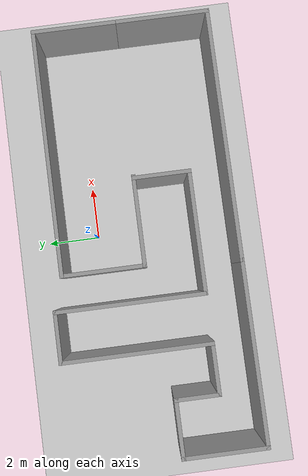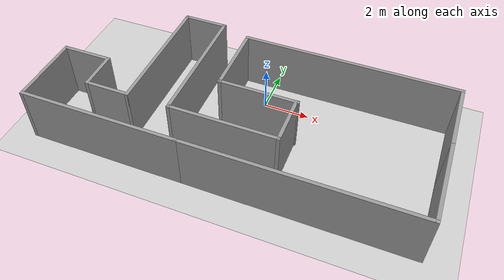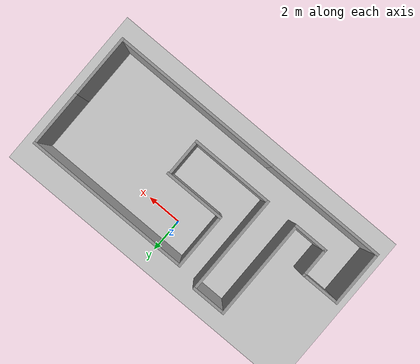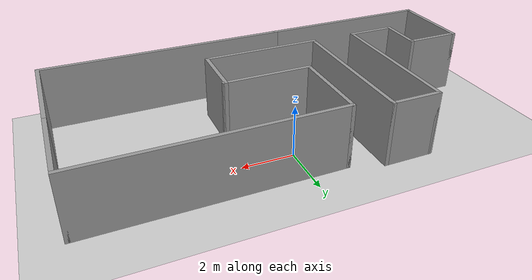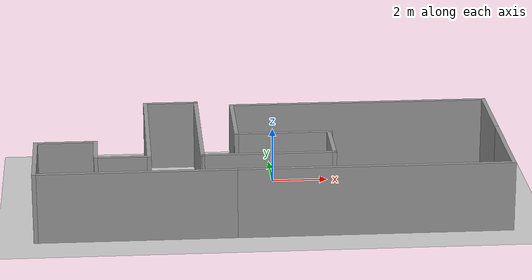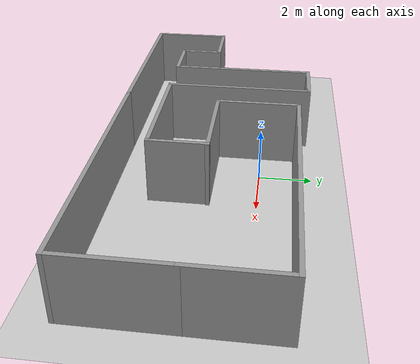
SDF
<sdf version="1.6">
 <world name="default">
  <light name="sun" type="directional">
   <pose>0 0 10 0 -0 0</pose>
   <diffuse>0.8 0.8 0.8 1</diffuse>
   <specular>0.2 0.2 0.2 1</specular>
   <attenuation>
    <range>1000</range>
    <constant>0.9</constant>
    <linear>0.01</linear>
    <quadratic>0.001</quadratic>
   </attenuation>
   <direction>-0.5 0.1 -0.9</direction>
  </light>
  <model name="ground_plane">
   <static>1</static>
   <link name="link">
    <collision name="collision">
     <geometry><plane><normal>0 0 1</normal><size>100 100</size></plane></geometry>
     <surface>
      <contact><collide_bitmask>65535</collide_bitmask></contact>
      <friction><ode><mu>100</mu><mu2>50</mu2></ode></friction>
     </surface>
    </collision>
    <visual name="visual">
     <cast_shadows>0</cast_shadows>
     <geometry><plane><normal>0 0 1</normal><size>100 100</size></plane></geometry>
     <material>
      <script><uri>file://media/materials/scripts/gazebo.material</uri><name>Gazebo/Grey</name></script>
     </material>
    </visual>
   </link>
  </model>
  <gravity>0 0 -9.8</gravity>
  <magnetic_field>6e-06 2.3e-05 -4.2e-05</magnetic_field>
  <atmosphere type="adiabatic"/>
  <physics name="default_physics" default="0" type="ode">
   <max_step_size>0.001</max_step_size>
   <real_time_factor>1</real_time_factor>
   <real_time_update_rate>1000</real_time_update_rate>
  </physics>
  <scene><ambient>0.4 0.4 0.4 1</ambient><background>0.7 0.7 0.7 1</background><shadows>1</shadows></scene>
  <audio><device>default</device></audio>
  <spherical_coordinates>
   <surface_model>EARTH_WGS84</surface_model>
   <latitude_deg>0</latitude_deg>
   <longitude_deg>0</longitude_deg>
   <elevation>0</elevation>
   <heading_deg>0</heading_deg>
  </spherical_coordinates>
  <model name="house-1">
   <pose>-0.292569 -1.79671 0 0 -0 0</pose>
   <link name="Wall_0">
    <collision name="Wall_0_Collision">
     <geometry><box><size>3.5 0.15 2.5</size></box></geometry>
     <pose>0 0 1.25 0 -0 0</pose>
    </collision>
    <visual name="Wall_0_Visual">
     <pose>0 0 1.25 0 -0 0</pose>
     <geometry><box><size>3.5 0.15 2.5</size></box></geometry>
     <material>
      <script><uri>file://media/materials/scripts/gazebo.material</uri><name>Gazebo/Grey</name></script>
      <ambient>1 1 1 1</ambient>
     </material>
     <meta><layer>0</layer></meta>
    </visual>
    <pose>0.55 0.05 0 0 -0 3.14159</pose>
   </link>
   <link name="Wall_1">
    <collision name="Wall_1_Collision">
     <geometry><box><size>3.25 0.15 2.5</size></box></geometry>
     <pose>0 0 1.25 0 -0 0</pose>
    </collision>
    <visual name="Wall_1_Visual">
     <pose>0 0 1.25 0 -0 0</pose>
     <geometry><box><size>3.25 0.15 2.5</size></box></geometry>
     <material>
      <script><uri>file://media/materials/scripts/gazebo.material</uri><name>Gazebo/Grey</name></script>
      <ambient>1 1 1 1</ambient>
     </material>
     <meta><layer>0</layer></meta>
    </visual>
    <pose>-1.125 1.6 0 0 -0 1.5708</pose>
   </link>
   <link name="Wall_10">
    <collision name="Wall_10_Collision">
     <geometry><box><size>1.75 0.15 2.5</size></box></geometry>
     <pose>0 0 1.25 0 -0 0</pose>
    </collision>
    <visual name="Wall_10_Visual">
     <pose>0 0 1.25 0 -0 0</pose>
     <geometry><box><size>1.75 0.15 2.5</size></box></geometry>
     <material>
      <script><uri>file://media/materials/scripts/gazebo.material</uri><name>Gazebo/Grey</name></script>
      <ambient>1 1 1 1</ambient>
     </material>
     <meta><layer>0</layer></meta>
    </visual>
    <pose>-6.125 -1.25 0 0 -0 -1.5708</pose>
   </link>
   <link name="Wall_11">
    <collision name="Wall_11_Collision">
     <geometry><box><size>2 0.15 2.5</size></box></geometry>
     <pose>0 0 1.25 0 -0 0</pose>
    </collision>
    <visual name="Wall_11_Visual">
     <pose>0 0 1.25 0 -0 0</pose>
     <geometry><box><size>2 0.15 2.5</size></box></geometry>
     <material>
      <script><uri>file://media/materials/scripts/gazebo.material</uri><name>Gazebo/Grey</name></script>
      <ambient>1 1 1 1</ambient>
     </material>
     <meta><layer>0</layer></meta>
    </visual>
    <pose>-5.2 -2.05 0 0 -0 0</pose>
   </link>
   <link name="Wall_12">
    <collision name="Wall_12_Collision">
     <geometry><box><size>5.75 0.15 2.5</size></box></geometry>
     <pose>0 0 1.25 0 -0 0</pose>
    </collision>
    <visual name="Wall_12_Visual">
     <pose>0 0 1.25 0 -0 0</pose>
     <geometry><box><size>5.75 0.15 2.5</size></box></geometry>
     <material>
      <script><uri>file://media/materials/scripts/gazebo.material</uri><name>Gazebo/Grey</name></script>
      <ambient>1 1 1 1</ambient>
     </material>
     <meta><layer>0</layer></meta>
    </visual>
    <pose>-4.275 0.75 0 0 -0 1.5708</pose>
   </link>
   <link name="Wall_13">
    <collision name="Wall_13_Collision">
     <geometry><box><size>2 0.15 2.5</size></box></geometry>
     <pose>0 0 1.25 0 -0 0</pose>
    </collision>
    <visual name="Wall_13_Visual">
     <pose>0 0 1.25 0 -0 0</pose>
     <geometry><box><size>2 0.15 2.5</size></box></geometry>
     <material>
      <script><uri>file://media/materials/scripts/gazebo.material</uri><name>Gazebo/Grey</name></script>
      <ambient>1 1 1 1</ambient>
     </material>
     <meta><layer>0</layer></meta>
    </visual>
    <pose>-3.35 3.55 0 0 -0 0</pose>
   </link>
   <link name="Wall_14">
    <collision name="Wall_14_Collision">
     <geometry><box><size>5.75 0.15 2.5</size></box></geometry>
     <pose>0 0 1.25 0 -0 0</pose>
    </collision>
    <visual name="Wall_14_Visual">
     <pose>0 0 1.25 0 -0 0</pose>
     <geometry><box><size>5.75 0.15 2.5</size></box></geometry>
     <material>
      <script><uri>file://media/materials/scripts/gazebo.material</uri><name>Gazebo/Grey</name></script>
      <ambient>1 1 1 1</ambient>
     </material>
     <meta><layer>0</layer></meta>
    </visual>
    <pose>-2.425 0.75 0 0 -0 -1.5708</pose>
   </link>
   <link name="Wall_15">
    <collision name="Wall_15_Collision">
     <geometry><box><size>4.75 0.15 2.5</size></box></geometry>
     <pose>0 0 1.25 0 -0 0</pose>
    </collision>
    <visual name="Wall_15_Visual">
     <pose>0 0 1.25 0 -0 0</pose>
     <geometry><box><size>4.75 0.15 2.5</size></box></geometry>
     <material>
      <script><uri>file://media/materials/scripts/gazebo.material</uri><name>Gazebo/Grey</name></script>
      <ambient>1 1 1 1</ambient>
     </material>
     <meta><layer>0</layer></meta>
    </visual>
    <pose>-0.125 -2.05 0 0 -0 0</pose>
   </link>
   <link name="Wall_16">
    <collision name="Wall_16_Collision">
     <geometry><box><size>2.25 0.15 2.5</size></box></geometry>
     <pose>0 0 1.25 0 -0 0</pose>
    </collision>
    <visual name="Wall_16_Visual">
     <pose>0 0 1.25 0 -0 0</pose>
     <geometry><box><size>2.25 0.15 2.5</size></box></geometry>
     <material>
      <script><uri>file://media/materials/scripts/gazebo.material</uri><name>Gazebo/Grey</name></script>
      <ambient>1 1 1 1</ambient>
     </material>
     <meta><layer>0</layer></meta>
    </visual>
    <pose>2.175 -1 0 0 -0 1.5708</pose>
   </link>
   <link name="Wall_2">
    <collision name="Wall_2_Collision">
     <geometry><box><size>9.5 0.15 2.5</size></box></geometry>
     <pose>0 0 1.25 0 -0 0</pose>
    </collision>
    <visual name="Wall_2_Visual">
     <pose>0 0 1.25 0 -0 0</pose>
     <geometry><box><size>9.5 0.15 2.5</size></box></geometry>
     <material>
      <script><uri>file://media/materials/scripts/gazebo.material</uri><name>Gazebo/Grey</name></script>
      <ambient>1 1 1 1</ambient>
     </material>
     <meta><layer>0</layer></meta>
    </visual>
    <pose>3.55 3.15 0 0 -0 0</pose>
   </link>
   <link name="Wall_3">
    <collision name="Wall_3_Collision">
     <geometry><box><size>3.25 0.15 2.5</size></box></geometry>
     <pose>0 0 1.25 0 -0 0</pose>
    </collision>
    <visual name="Wall_3_Visual">
     <pose>0 0 1.25 0 -0 0</pose>
     <geometry><box><size>3.25 0.15 2.5</size></box></geometry>
     <material>
      <script><uri>file://media/materials/scripts/gazebo.material</uri><name>Gazebo/Grey</name></script>
      <ambient>1 1 1 1</ambient>
     </material>
     <meta><layer>0</layer></meta>
    </visual>
    <pose>8.225 1.6 0 0 -0 -1.5708</pose>
   </link>
   <link name="Wall_5">
    <collision name="Wall_5_Collision">
     <geometry><box><size>3.75 0.15 2.5</size></box></geometry>
     <pose>0 0 1.25 0 -0 0</pose>
    </collision>
    <visual name="Wall_5_Visual">
     <pose>0 0 1.25 0 -0 0</pose>
     <geometry><box><size>3.75 0.15 2.5</size></box></geometry>
     <material>
      <script><uri>file://media/materials/scripts/gazebo.material</uri><name>Gazebo/Grey</name></script>
      <ambient>1 1 1 1</ambient>
     </material>
     <meta><layer>0</layer></meta>
    </visual>
    <pose>8.225 -1.75 0 0 -0 -1.5708</pose>
   </link>
   <link name="Wall_6">
    <collision name="Wall_6_Collision">
     <geometry><box><size>9.75 0.15 2.5</size></box></geometry>
     <pose>0 0 1.25 0 -0 0</pose>
    </collision>
    <visual name="Wall_6_Visual">
     <pose>0 0 1.25 0 -0 0</pose>
     <geometry><box><size>9.75 0.15 2.5</size></box></geometry>
     <material>
      <script><uri>file://media/materials/scripts/gazebo.material</uri><name>Gazebo/Grey</name></script>
      <ambient>1 1 1 1</ambient>
     </material>
     <meta><layer>0</layer></meta>
    </visual>
    <pose>3.425 -3.55 0 0 -0 3.14159</pose>
   </link>
   <link name="Wall_7">
    <collision name="Wall_7_Collision">
     <geometry><box><size>7 0.15 2.5</size></box></geometry>
     <pose>0 0 1.25 0 -0 0</pose>
    </collision>
    <visual name="Wall_7_Visual">
     <pose>0 0 1.25 0 -0 0</pose>
     <geometry><box><size>7 0.15 2.5</size></box></geometry>
     <material>
      <script><uri>file://media/materials/scripts/gazebo.material</uri><name>Gazebo/Grey</name></script>
      <ambient>1 1 1 1</ambient>
     </material>
     <meta><layer>0</layer></meta>
    </visual>
    <pose>-4.8 -3.55 0 0 -0 3.14159</pose>
   </link>
   <link name="Wall_8">
    <collision name="Wall_8_Collision">
     <geometry><box><size>3.25 0.15 2.5</size></box></geometry>
     <pose>0 0 1.25 0 -0 0</pose>
    </collision>
    <visual name="Wall_8_Visual">
     <pose>0 0 1.25 0 -0 0</pose>
     <geometry><box><size>3.25 0.15 2.5</size></box></geometry>
     <material>
      <script><uri>file://media/materials/scripts/gazebo.material</uri><name>Gazebo/Grey</name></script>
      <ambient>1 1 1 1</ambient>
     </material>
     <meta><layer>0</layer></meta>
    </visual>
    <pose>-8.225 -2 0 0 -0 1.5708</pose>
   </link>
   <link name="Wall_9">
    <collision name="Wall_9_Collision">
     <geometry><box><size>2.25 0.15 2.5</size></box></geometry>
     <pose>0 0 1.25 0 -0 0</pose>
    </collision>
    <visual name="Wall_9_Visual">
     <pose>0 0 1.25 0 -0 0</pose>
     <geometry><box><size>2.25 0.15 2.5</size></box></geometry>
     <material>
      <script><uri>file://media/materials/scripts/gazebo.material</uri><name>Gazebo/Grey</name></script>
      <ambient>1 1 1 1</ambient>
     </material>
     <meta><layer>0</layer></meta>
    </visual>
    <pose>-7.175 -0.45 0 0 -0 0</pose>
   </link>
   <static>1</static>
  </model>
  <plugin filename="libcollision_map_creator.so" name="collision_map_creator"/>
 </world>
</sdf>
